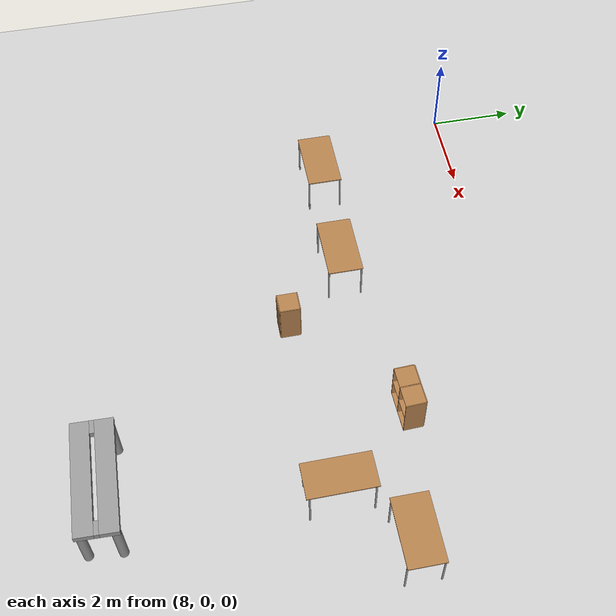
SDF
<sdf version="1.6">
 <world name="default">
  <model name="ground_plane">
   <static>1</static>
   <link name="link">
    <collision name="collision">
     <geometry><plane><normal>0 0 1</normal><size>100 100</size></plane></geometry>
     <surface><friction><ode><mu>100</mu><mu2>50</mu2></ode></friction></surface>
    </collision>
    <visual name="visual">
     <cast_shadows>0</cast_shadows>
     <geometry><plane><normal>0 0 1</normal><size>100 100</size></plane></geometry>
     <material>
      <script><uri>file://media/materials/scripts/gazebo.material</uri><name>Gazebo/Grey</name></script>
     </material>
    </visual>
   </link>
  </model>
  <model name="table_7">
   <static>1</static>
   <link name="link">
    <collision name="surface">
     <pose>0 0 1 0 -0 0</pose>
     <geometry><box><size>1.5 0.8 0.03</size></box></geometry>
     <surface><friction><ode><mu>0.6</mu><mu2>0.6</mu2></ode></friction></surface>
    </collision>
    <visual name="visual1">
     <pose>0 0 1 0 -0 0</pose>
     <geometry><box><size>1.5 0.8 0.03</size></box></geometry>
     <material>
      <script><uri>file://media/materials/scripts/gazebo.material</uri><name>Gazebo/Wood</name></script>
     </material>
    </visual>
    <collision name="front_left_leg">
     <pose>0.68 0.38 0.5 0 -0 0</pose>
     <geometry><cylinder><radius>0.02</radius><length>1</length></cylinder></geometry>
    </collision>
    <visual name="front_left_leg">
     <pose>0.68 0.38 0.5 0 -0 0</pose>
     <geometry><cylinder><radius>0.02</radius><length>1</length></cylinder></geometry>
     <material>
      <script><uri>file://media/materials/scripts/gazebo.material</uri><name>Gazebo/Grey</name></script>
     </material>
    </visual>
    <collision name="front_right_leg">
     <pose>0.68 -0.38 0.5 0 -0 0</pose>
     <geometry><cylinder><radius>0.02</radius><length>1</length></cylinder></geometry>
    </collision>
    <visual name="front_right_leg">
     <pose>0.68 -0.38 0.5 0 -0 0</pose>
     <geometry><cylinder><radius>0.02</radius><length>1</length></cylinder></geometry>
     <material>
      <script><uri>file://media/materials/scripts/gazebo.material</uri><name>Gazebo/Grey</name></script>
     </material>
    </visual>
    <collision name="back_right_leg">
     <pose>-0.68 -0.38 0.5 0 -0 0</pose>
     <geometry><cylinder><radius>0.02</radius><length>1</length></cylinder></geometry>
    </collision>
    <visual name="back_right_leg">
     <pose>-0.68 -0.38 0.5 0 -0 0</pose>
     <geometry><cylinder><radius>0.02</radius><length>1</length></cylinder></geometry>
     <material>
      <script><uri>file://media/materials/scripts/gazebo.material</uri><name>Gazebo/Grey</name></script>
     </material>
    </visual>
    <collision name="back_left_leg">
     <pose>-0.68 0.38 0.5 0 -0 0</pose>
     <geometry><cylinder><radius>0.02</radius><length>1</length></cylinder></geometry>
    </collision>
    <visual name="back_left_leg">
     <pose>-0.68 0.38 0.5 0 -0 0</pose>
     <geometry><cylinder><radius>0.02</radius><length>1</length></cylinder></geometry>
     <material>
      <script><uri>file://media/materials/scripts/gazebo.material</uri><name>Gazebo/Grey</name></script>
     </material>
    </visual>
   </link>
   <pose>9.59666 -3.43752 0 0 -0 0</pose>
  </model>
  <model name="table_8">
   <static>1</static>
   <link name="link">
    <collision name="surface">
     <pose>0 0 1 0 -0 0</pose>
     <geometry><box><size>1.5 0.8 0.03</size></box></geometry>
     <surface><friction><ode><mu>0.6</mu><mu2>0.6</mu2></ode></friction></surface>
    </collision>
    <visual name="visual1">
     <pose>0 0 1 0 -0 0</pose>
     <geometry><box><size>1.5 0.8 0.03</size></box></geometry>
     <material>
      <script><uri>file://media/materials/scripts/gazebo.material</uri><name>Gazebo/Wood</name></script>
     </material>
    </visual>
    <collision name="front_left_leg">
     <pose>0.68 0.38 0.5 0 -0 0</pose>
     <geometry><cylinder><radius>0.02</radius><length>1</length></cylinder></geometry>
    </collision>
    <visual name="front_left_leg">
     <pose>0.68 0.38 0.5 0 -0 0</pose>
     <geometry><cylinder><radius>0.02</radius><length>1</length></cylinder></geometry>
     <material>
      <script><uri>file://media/materials/scripts/gazebo.material</uri><name>Gazebo/Grey</name></script>
     </material>
    </visual>
    <collision name="front_right_leg">
     <pose>0.68 -0.38 0.5 0 -0 0</pose>
     <geometry><cylinder><radius>0.02</radius><length>1</length></cylinder></geometry>
    </collision>
    <visual name="front_right_leg">
     <pose>0.68 -0.38 0.5 0 -0 0</pose>
     <geometry><cylinder><radius>0.02</radius><length>1</length></cylinder></geometry>
     <material>
      <script><uri>file://media/materials/scripts/gazebo.material</uri><name>Gazebo/Grey</name></script>
     </material>
    </visual>
    <collision name="back_right_leg">
     <pose>-0.68 -0.38 0.5 0 -0 0</pose>
     <geometry><cylinder><radius>0.02</radius><length>1</length></cylinder></geometry>
    </collision>
    <visual name="back_right_leg">
     <pose>-0.68 -0.38 0.5 0 -0 0</pose>
     <geometry><cylinder><radius>0.02</radius><length>1</length></cylinder></geometry>
     <material>
      <script><uri>file://media/materials/scripts/gazebo.material</uri><name>Gazebo/Grey</name></script>
     </material>
    </visual>
    <collision name="back_left_leg">
     <pose>-0.68 0.38 0.5 0 -0 0</pose>
     <geometry><cylinder><radius>0.02</radius><length>1</length></cylinder></geometry>
    </collision>
    <visual name="back_left_leg">
     <pose>-0.68 0.38 0.5 0 -0 0</pose>
     <geometry><cylinder><radius>0.02</radius><length>1</length></cylinder></geometry>
     <material>
      <script><uri>file://media/materials/scripts/gazebo.material</uri><name>Gazebo/Grey</name></script>
     </material>
    </visual>
   </link>
   <pose>12.3488 -3.49481 0 0 -0 0</pose>
  </model>
  <model name="table_9">
   <static>1</static>
   <link name="link">
    <collision name="surface">
     <pose>0 0 1 0 -0 0</pose>
     <geometry><box><size>1.5 0.8 0.03</size></box></geometry>
     <surface><friction><ode><mu>0.6</mu><mu2>0.6</mu2></ode></friction></surface>
    </collision>
    <visual name="visual1">
     <pose>0 0 1 0 -0 0</pose>
     <geometry><box><size>1.5 0.8 0.03</size></box></geometry>
     <material>
      <script><uri>file://media/materials/scripts/gazebo.material</uri><name>Gazebo/Wood</name></script>
     </material>
    </visual>
    <collision name="front_left_leg">
     <pose>0.68 0.38 0.5 0 -0 0</pose>
     <geometry><cylinder><radius>0.02</radius><length>1</length></cylinder></geometry>
    </collision>
    <visual name="front_left_leg">
     <pose>0.68 0.38 0.5 0 -0 0</pose>
     <geometry><cylinder><radius>0.02</radius><length>1</length></cylinder></geometry>
     <material>
      <script><uri>file://media/materials/scripts/gazebo.material</uri><name>Gazebo/Grey</name></script>
     </material>
    </visual>
    <collision name="front_right_leg">
     <pose>0.68 -0.38 0.5 0 -0 0</pose>
     <geometry><cylinder><radius>0.02</radius><length>1</length></cylinder></geometry>
    </collision>
    <visual name="front_right_leg">
     <pose>0.68 -0.38 0.5 0 -0 0</pose>
     <geometry><cylinder><radius>0.02</radius><length>1</length></cylinder></geometry>
     <material>
      <script><uri>file://media/materials/scripts/gazebo.material</uri><name>Gazebo/Grey</name></script>
     </material>
    </visual>
    <collision name="back_right_leg">
     <pose>-0.68 -0.38 0.5 0 -0 0</pose>
     <geometry><cylinder><radius>0.02</radius><length>1</length></cylinder></geometry>
    </collision>
    <visual name="back_right_leg">
     <pose>-0.68 -0.38 0.5 0 -0 0</pose>
     <geometry><cylinder><radius>0.02</radius><length>1</length></cylinder></geometry>
     <material>
      <script><uri>file://media/materials/scripts/gazebo.material</uri><name>Gazebo/Grey</name></script>
     </material>
    </visual>
    <collision name="back_left_leg">
     <pose>-0.68 0.38 0.5 0 -0 0</pose>
     <geometry><cylinder><radius>0.02</radius><length>1</length></cylinder></geometry>
    </collision>
    <visual name="back_left_leg">
     <pose>-0.68 0.38 0.5 0 -0 0</pose>
     <geometry><cylinder><radius>0.02</radius><length>1</length></cylinder></geometry>
     <material>
      <script><uri>file://media/materials/scripts/gazebo.material</uri><name>Gazebo/Grey</name></script>
     </material>
    </visual>
   </link>
   <pose>18.0296 -4.65808 0 0 -0 1.57535</pose>
  </model>
  <model name="table_10">
   <static>1</static>
   <link name="link">
    <collision name="surface">
     <pose>0 0 1 0 -0 0</pose>
     <geometry><box><size>1.5 0.8 0.03</size></box></geometry>
     <surface><friction><ode><mu>0.6</mu><mu2>0.6</mu2></ode></friction></surface>
    </collision>
    <visual name="visual1">
     <pose>0 0 1 0 -0 0</pose>
     <geometry><box><size>1.5 0.8 0.03</size></box></geometry>
     <material>
      <script><uri>file://media/materials/scripts/gazebo.material</uri><name>Gazebo/Wood</name></script>
     </material>
    </visual>
    <collision name="front_left_leg">
     <pose>0.68 0.38 0.5 0 -0 0</pose>
     <geometry><cylinder><radius>0.02</radius><length>1</length></cylinder></geometry>
    </collision>
    <visual name="front_left_leg">
     <pose>0.68 0.38 0.5 0 -0 0</pose>
     <geometry><cylinder><radius>0.02</radius><length>1</length></cylinder></geometry>
     <material>
      <script><uri>file://media/materials/scripts/gazebo.material</uri><name>Gazebo/Grey</name></script>
     </material>
    </visual>
    <collision name="front_right_leg">
     <pose>0.68 -0.38 0.5 0 -0 0</pose>
     <geometry><cylinder><radius>0.02</radius><length>1</length></cylinder></geometry>
    </collision>
    <visual name="front_right_leg">
     <pose>0.68 -0.38 0.5 0 -0 0</pose>
     <geometry><cylinder><radius>0.02</radius><length>1</length></cylinder></geometry>
     <material>
      <script><uri>file://media/materials/scripts/gazebo.material</uri><name>Gazebo/Grey</name></script>
     </material>
    </visual>
    <collision name="back_right_leg">
     <pose>-0.68 -0.38 0.5 0 -0 0</pose>
     <geometry><cylinder><radius>0.02</radius><length>1</length></cylinder></geometry>
    </collision>
    <visual name="back_right_leg">
     <pose>-0.68 -0.38 0.5 0 -0 0</pose>
     <geometry><cylinder><radius>0.02</radius><length>1</length></cylinder></geometry>
     <material>
      <script><uri>file://media/materials/scripts/gazebo.material</uri><name>Gazebo/Grey</name></script>
     </material>
    </visual>
    <collision name="back_left_leg">
     <pose>-0.68 0.38 0.5 0 -0 0</pose>
     <geometry><cylinder><radius>0.02</radius><length>1</length></cylinder></geometry>
    </collision>
    <visual name="back_left_leg">
     <pose>-0.68 0.38 0.5 0 -0 0</pose>
     <geometry><cylinder><radius>0.02</radius><length>1</length></cylinder></geometry>
     <material>
      <script><uri>file://media/materials/scripts/gazebo.material</uri><name>Gazebo/Grey</name></script>
     </material>
    </visual>
   </link>
   <pose>19.4515 -3.39812 0 0 -0 0</pose>
  </model>
  <model name="work_table_3">
   <link name="link_0">
    <pose>1.115 -0.35 -0.3125 0 -0 0</pose>
    <inertial>
     <mass>1</mass>
     <inertia><ixx>0.145833</ixx><ixy>0</ixy><ixz>0</ixz><iyy>0.145833</iyy><iyz>0</iyz><izz>0.125</izz></inertia>
    </inertial>
    <visual name="visual">
     <geometry><cylinder><radius>0.1</radius><length>1.1</length></cylinder></geometry>
     <material>
      <lighting>1</lighting>
      <script><uri>file://media/materials/scripts/gazebo.material</uri><name>Gazebo/Grey</name></script>
      <ambient>0.3 0.3 0.3 1</ambient>
      <diffuse>0.7 0.7 0.7 1</diffuse>
      <specular>0.01 0.01 0.01 1</specular>
      <emissive>0 0 0 1</emissive>
      <shader type="vertex"><normal_map>__default__</normal_map></shader>
     </material>
    </visual>
    <collision name="collision">
     <geometry><cylinder><radius>0.1</radius><length>1.1</length></cylinder></geometry>
     <surface>
      <friction>
       <ode><mu>1</mu><mu2>1</mu2><fdir1>0 0 0</fdir1><slip1>0</slip1><slip2>0</slip2></ode>
       <torsional>
        <coefficient>1</coefficient>
        <patch_radius>0</patch_radius>
        <surface_radius>0</surface_radius>
        <use_patch_radius>1</use_patch_radius>
        <ode><slip>0</slip></ode>
       </torsional>
      </friction>
      <bounce><restitution_coefficient>0</restitution_coefficient><threshold>1e+06</threshold></bounce>
      <contact>
       <collide_without_contact>0</collide_without_contact>
       <collide_without_contact_bitmask>1</collide_without_contact_bitmask>
       <collide_bitmask>1</collide_bitmask>
       <ode>
        <soft_cfm>0</soft_cfm>
        <soft_erp>0.2</soft_erp>
        <kp>1e+13</kp>
        <kd>1</kd>
        <max_vel>0.01</max_vel>
        <min_depth>0</min_depth>
       </ode>
       <bullet>
        <split_impulse>1</split_impulse>
        <split_impulse_penetration_threshold>-0.01</split_impulse_penetration_threshold>
        <soft_cfm>0</soft_cfm>
        <soft_erp>0.2</soft_erp>
        <kp>1e+13</kp>
        <kd>1</kd>
       </bullet>
      </contact>
     </surface>
    </collision>
   </link>
   <link name="link_0_clone">
    <pose>-1.145 -0.35 -0.3125 0 -0 0</pose>
    <inertial>
     <mass>1</mass>
     <inertia><ixx>0.145833</ixx><ixy>0</ixy><ixz>0</ixz><iyy>0.145833</iyy><iyz>0</iyz><izz>0.125</izz></inertia>
    </inertial>
    <visual name="visual">
     <geometry><cylinder><radius>0.1</radius><length>1.1</length></cylinder></geometry>
     <material>
      <lighting>1</lighting>
      <script><uri>file://media/materials/scripts/gazebo.material</uri><name>Gazebo/Grey</name></script>
      <ambient>0.3 0.3 0.3 1</ambient>
      <diffuse>0.7 0.7 0.7 1</diffuse>
      <specular>0.01 0.01 0.01 1</specular>
      <emissive>0 0 0 1</emissive>
      <shader type="vertex"><normal_map>__default__</normal_map></shader>
     </material>
    </visual>
    <collision name="collision">
     <geometry><cylinder><radius>0.1</radius><length>1.1</length></cylinder></geometry>
     <surface>
      <friction>
       <ode><mu>1</mu><mu2>1</mu2><fdir1>0 0 0</fdir1><slip1>0</slip1><slip2>0</slip2></ode>
       <torsional>
        <coefficient>1</coefficient>
        <patch_radius>0</patch_radius>
        <surface_radius>0</surface_radius>
        <use_patch_radius>1</use_patch_radius>
        <ode><slip>0</slip></ode>
       </torsional>
      </friction>
      <bounce><restitution_coefficient>0</restitution_coefficient><threshold>1e+06</threshold></bounce>
      <contact>
       <collide_without_contact>0</collide_without_contact>
       <collide_without_contact_bitmask>1</collide_without_contact_bitmask>
       <collide_bitmask>1</collide_bitmask>
       <ode>
        <soft_cfm>0</soft_cfm>
        <soft_erp>0.2</soft_erp>
        <kp>1e+13</kp>
        <kd>1</kd>
        <max_vel>0.01</max_vel>
        <min_depth>0</min_depth>
       </ode>
       <bullet>
        <split_impulse>1</split_impulse>
        <split_impulse_penetration_threshold>-0.01</split_impulse_penetration_threshold>
        <soft_cfm>0</soft_cfm>
        <soft_erp>0.2</soft_erp>
        <kp>1e+13</kp>
        <kd>1</kd>
       </bullet>
      </contact>
     </surface>
    </collision>
   </link>
   <link name="link_0_clone_0">
    <pose>-1.145 0.35 -0.3125 0 -0 0</pose>
    <inertial>
     <mass>1</mass>
     <inertia><ixx>0.145833</ixx><ixy>0</ixy><ixz>0</ixz><iyy>0.145833</iyy><iyz>0</iyz><izz>0.125</izz></inertia>
    </inertial>
    <visual name="visual">
     <geometry><cylinder><radius>0.1</radius><length>1.1</length></cylinder></geometry>
     <material>
      <lighting>1</lighting>
      <script><uri>file://media/materials/scripts/gazebo.material</uri><name>Gazebo/Grey</name></script>
      <ambient>0.3 0.3 0.3 1</ambient>
      <diffuse>0.7 0.7 0.7 1</diffuse>
      <specular>0.01 0.01 0.01 1</specular>
      <emissive>0 0 0 1</emissive>
      <shader type="vertex"><normal_map>__default__</normal_map></shader>
     </material>
    </visual>
    <collision name="collision">
     <geometry><cylinder><radius>0.1</radius><length>1.1</length></cylinder></geometry>
     <surface>
      <friction>
       <ode><mu>1</mu><mu2>1</mu2><fdir1>0 0 0</fdir1><slip1>0</slip1><slip2>0</slip2></ode>
       <torsional>
        <coefficient>1</coefficient>
        <patch_radius>0</patch_radius>
        <surface_radius>0</surface_radius>
        <use_patch_radius>1</use_patch_radius>
        <ode><slip>0</slip></ode>
       </torsional>
      </friction>
      <bounce><restitution_coefficient>0</restitution_coefficient><threshold>1e+06</threshold></bounce>
      <contact>
       <collide_without_contact>0</collide_without_contact>
       <collide_without_contact_bitmask>1</collide_without_contact_bitmask>
       <collide_bitmask>1</collide_bitmask>
       <ode>
        <soft_cfm>0</soft_cfm>
        <soft_erp>0.2</soft_erp>
        <kp>1e+13</kp>
        <kd>1</kd>
        <max_vel>0.01</max_vel>
        <min_depth>0</min_depth>
       </ode>
       <bullet>
        <split_impulse>1</split_impulse>
        <split_impulse_penetration_threshold>-0.01</split_impulse_penetration_threshold>
        <soft_cfm>0</soft_cfm>
        <soft_erp>0.2</soft_erp>
        <kp>1e+13</kp>
        <kd>1</kd>
       </bullet>
      </contact>
     </surface>
    </collision>
   </link>
   <link name="link_0_clone_1">
    <pose>1.155 0.35 -0.3125 0 -0 0</pose>
    <inertial>
     <mass>1</mass>
     <inertia><ixx>0.145833</ixx><ixy>0</ixy><ixz>0</ixz><iyy>0.145833</iyy><iyz>0</iyz><izz>0.125</izz></inertia>
    </inertial>
    <visual name="visual">
     <geometry><cylinder><radius>0.1</radius><length>1.1</length></cylinder></geometry>
     <material>
      <lighting>1</lighting>
      <script><uri>file://media/materials/scripts/gazebo.material</uri><name>Gazebo/Grey</name></script>
      <ambient>0.3 0.3 0.3 1</ambient>
      <diffuse>0.7 0.7 0.7 1</diffuse>
      <specular>0.01 0.01 0.01 1</specular>
      <emissive>0 0 0 1</emissive>
      <shader type="vertex"><normal_map>__default__</normal_map></shader>
     </material>
    </visual>
    <collision name="collision">
     <geometry><cylinder><radius>0.1</radius><length>1.1</length></cylinder></geometry>
     <surface>
      <friction>
       <ode><mu>1</mu><mu2>1</mu2><fdir1>0 0 0</fdir1><slip1>0</slip1><slip2>0</slip2></ode>
       <torsional>
        <coefficient>1</coefficient>
        <patch_radius>0</patch_radius>
        <surface_radius>0</surface_radius>
        <use_patch_radius>1</use_patch_radius>
        <ode><slip>0</slip></ode>
       </torsional>
      </friction>
      <bounce><restitution_coefficient>0</restitution_coefficient><threshold>1e+06</threshold></bounce>
      <contact>
       <collide_without_contact>0</collide_without_contact>
       <collide_without_contact_bitmask>1</collide_without_contact_bitmask>
       <collide_bitmask>1</collide_bitmask>
       <ode>
        <soft_cfm>0</soft_cfm>
        <soft_erp>0.2</soft_erp>
        <kp>1e+13</kp>
        <kd>1</kd>
        <max_vel>0.01</max_vel>
        <min_depth>0</min_depth>
       </ode>
       <bullet>
        <split_impulse>1</split_impulse>
        <split_impulse_penetration_threshold>-0.01</split_impulse_penetration_threshold>
        <soft_cfm>0</soft_cfm>
        <soft_erp>0.2</soft_erp>
        <kp>1e+13</kp>
        <kd>1</kd>
       </bullet>
      </contact>
     </surface>
    </collision>
   </link>
   <link name="link_1">
    <pose>0.005 -0.25 0.3125 0 -0 0</pose>
    <inertial>
     <mass>1</mass>
     <inertia>
      <ixx>0.166667</ixx>
      <ixy>0</ixy>
      <ixz>0</ixz>
      <iyy>0.166667</iyy>
      <iyz>0</iyz>
      <izz>0.166667</izz>
     </inertia>
    </inertial>
    <visual name="visual">
     <geometry><box><size>2.5 0.4 0.15</size></box></geometry>
     <material>
      <lighting>1</lighting>
      <script><uri>file://media/materials/scripts/gazebo.material</uri><name>Gazebo/Grey</name></script>
      <ambient>0.3 0.3 0.3 1</ambient>
      <diffuse>0.7 0.7 0.7 1</diffuse>
      <specular>0.01 0.01 0.01 1</specular>
      <emissive>0 0 0 1</emissive>
      <shader type="vertex"><normal_map>__default__</normal_map></shader>
     </material>
    </visual>
    <collision name="collision">
     <geometry><box><size>2.5 0.4 0.15</size></box></geometry>
     <surface>
      <friction>
       <ode><mu>1</mu><mu2>1</mu2><fdir1>0 0 0</fdir1><slip1>0</slip1><slip2>0</slip2></ode>
       <torsional>
        <coefficient>1</coefficient>
        <patch_radius>0</patch_radius>
        <surface_radius>0</surface_radius>
        <use_patch_radius>1</use_patch_radius>
        <ode><slip>0</slip></ode>
       </torsional>
      </friction>
      <bounce><restitution_coefficient>0</restitution_coefficient><threshold>1e+06</threshold></bounce>
      <contact>
       <collide_without_contact>0</collide_without_contact>
       <collide_without_contact_bitmask>1</collide_without_contact_bitmask>
       <collide_bitmask>1</collide_bitmask>
       <ode>
        <soft_cfm>0</soft_cfm>
        <soft_erp>0.2</soft_erp>
        <kp>1e+13</kp>
        <kd>1</kd>
        <max_vel>0.01</max_vel>
        <min_depth>0</min_depth>
       </ode>
       <bullet>
        <split_impulse>1</split_impulse>
        <split_impulse_penetration_threshold>-0.01</split_impulse_penetration_threshold>
        <soft_cfm>0</soft_cfm>
        <soft_erp>0.2</soft_erp>
        <kp>1e+13</kp>
        <kd>1</kd>
       </bullet>
      </contact>
     </surface>
    </collision>
   </link>
   <link name="link_1_clone">
    <pose>0.005 0.25 0.3125 0 -0 0</pose>
    <inertial>
     <mass>1</mass>
     <inertia>
      <ixx>0.166667</ixx>
      <ixy>0</ixy>
      <ixz>0</ixz>
      <iyy>0.166667</iyy>
      <iyz>0</iyz>
      <izz>0.166667</izz>
     </inertia>
    </inertial>
    <visual name="visual">
     <geometry><box><size>2.5 0.4 0.15</size></box></geometry>
     <material>
      <lighting>1</lighting>
      <script><uri>file://media/materials/scripts/gazebo.material</uri><name>Gazebo/Grey</name></script>
      <ambient>0.3 0.3 0.3 1</ambient>
      <diffuse>0.7 0.7 0.7 1</diffuse>
      <specular>0.01 0.01 0.01 1</specular>
      <emissive>0 0 0 1</emissive>
      <shader type="vertex"><normal_map>__default__</normal_map></shader>
     </material>
    </visual>
    <collision name="collision">
     <geometry><box><size>2.5 0.4 0.15</size></box></geometry>
     <surface>
      <friction>
       <ode><mu>1</mu><mu2>1</mu2><fdir1>0 0 0</fdir1><slip1>0</slip1><slip2>0</slip2></ode>
       <torsional>
        <coefficient>1</coefficient>
        <patch_radius>0</patch_radius>
        <surface_radius>0</surface_radius>
        <use_patch_radius>1</use_patch_radius>
        <ode><slip>0</slip></ode>
       </torsional>
      </friction>
      <bounce><restitution_coefficient>0</restitution_coefficient><threshold>1e+06</threshold></bounce>
      <contact>
       <collide_without_contact>0</collide_without_contact>
       <collide_without_contact_bitmask>1</collide_without_contact_bitmask>
       <collide_bitmask>1</collide_bitmask>
       <ode>
        <soft_cfm>0</soft_cfm>
        <soft_erp>0.2</soft_erp>
        <kp>1e+13</kp>
        <kd>1</kd>
        <max_vel>0.01</max_vel>
        <min_depth>0</min_depth>
       </ode>
       <bullet>
        <split_impulse>1</split_impulse>
        <split_impulse_penetration_threshold>-0.01</split_impulse_penetration_threshold>
        <soft_cfm>0</soft_cfm>
        <soft_erp>0.2</soft_erp>
        <kp>1e+13</kp>
        <kd>1</kd>
       </bullet>
      </contact>
     </surface>
    </collision>
   </link>
   <link name="link_1_clone_0">
    <pose>-1.095 0 0.3125 0 -0 0</pose>
    <inertial>
     <mass>1</mass>
     <inertia>
      <ixx>0.166667</ixx>
      <ixy>0</ixy>
      <ixz>0</ixz>
      <iyy>0.166667</iyy>
      <iyz>0</iyz>
      <izz>0.166667</izz>
     </inertia>
    </inertial>
    <visual name="visual">
     <geometry><box><size>0.3 0.1 0.15</size></box></geometry>
     <material>
      <lighting>1</lighting>
      <script><uri>file://media/materials/scripts/gazebo.material</uri><name>Gazebo/Grey</name></script>
      <ambient>0.3 0.3 0.3 1</ambient>
      <diffuse>0.7 0.7 0.7 1</diffuse>
      <specular>0.01 0.01 0.01 1</specular>
      <emissive>0 0 0 1</emissive>
      <shader type="vertex"><normal_map>__default__</normal_map></shader>
     </material>
    </visual>
    <collision name="collision">
     <geometry><box><size>0.3 0.1 0.15</size></box></geometry>
     <surface>
      <friction>
       <ode><mu>1</mu><mu2>1</mu2><fdir1>0 0 0</fdir1><slip1>0</slip1><slip2>0</slip2></ode>
       <torsional>
        <coefficient>1</coefficient>
        <patch_radius>0</patch_radius>
        <surface_radius>0</surface_radius>
        <use_patch_radius>1</use_patch_radius>
        <ode><slip>0</slip></ode>
       </torsional>
      </friction>
      <bounce><restitution_coefficient>0</restitution_coefficient><threshold>1e+06</threshold></bounce>
      <contact>
       <collide_without_contact>0</collide_without_contact>
       <collide_without_contact_bitmask>1</collide_without_contact_bitmask>
       <collide_bitmask>1</collide_bitmask>
       <ode>
        <soft_cfm>0</soft_cfm>
        <soft_erp>0.2</soft_erp>
        <kp>1e+13</kp>
        <kd>1</kd>
        <max_vel>0.01</max_vel>
        <min_depth>0</min_depth>
       </ode>
       <bullet>
        <split_impulse>1</split_impulse>
        <split_impulse_penetration_threshold>-0.01</split_impulse_penetration_threshold>
        <soft_cfm>0</soft_cfm>
        <soft_erp>0.2</soft_erp>
        <kp>1e+13</kp>
        <kd>1</kd>
       </bullet>
      </contact>
     </surface>
    </collision>
   </link>
   <link name="link_1_clone_0_clone">
    <pose>1.105 0 0.3125 0 -0 0</pose>
    <inertial>
     <mass>1</mass>
     <inertia>
      <ixx>0.166667</ixx>
      <ixy>0</ixy>
      <ixz>0</ixz>
      <iyy>0.166667</iyy>
      <iyz>0</iyz>
      <izz>0.166667</izz>
     </inertia>
    </inertial>
    <visual name="visual">
     <geometry><box><size>0.3 0.1 0.15</size></box></geometry>
     <material>
      <lighting>1</lighting>
      <script><uri>file://media/materials/scripts/gazebo.material</uri><name>Gazebo/Grey</name></script>
      <ambient>0.3 0.3 0.3 1</ambient>
      <diffuse>0.7 0.7 0.7 1</diffuse>
      <specular>0.01 0.01 0.01 1</specular>
      <emissive>0 0 0 1</emissive>
      <shader type="vertex"><normal_map>__default__</normal_map></shader>
     </material>
    </visual>
    <collision name="collision">
     <geometry><box><size>0.3 0.1 0.15</size></box></geometry>
     <surface>
      <friction>
       <ode><mu>1</mu><mu2>1</mu2><fdir1>0 0 0</fdir1><slip1>0</slip1><slip2>0</slip2></ode>
       <torsional>
        <coefficient>1</coefficient>
        <patch_radius>0</patch_radius>
        <surface_radius>0</surface_radius>
        <use_patch_radius>1</use_patch_radius>
        <ode><slip>0</slip></ode>
       </torsional>
      </friction>
      <bounce><restitution_coefficient>0</restitution_coefficient><threshold>1e+06</threshold></bounce>
      <contact>
       <collide_without_contact>0</collide_without_contact>
       <collide_without_contact_bitmask>1</collide_without_contact_bitmask>
       <collide_bitmask>1</collide_bitmask>
       <ode>
        <soft_cfm>0</soft_cfm>
        <soft_erp>0.2</soft_erp>
        <kp>1e+13</kp>
        <kd>1</kd>
        <max_vel>0.01</max_vel>
        <min_depth>0</min_depth>
       </ode>
       <bullet>
        <split_impulse>1</split_impulse>
        <split_impulse_penetration_threshold>-0.01</split_impulse_penetration_threshold>
        <soft_cfm>0</soft_cfm>
        <soft_erp>0.2</soft_erp>
        <kp>1e+13</kp>
        <kd>1</kd>
       </bullet>
      </contact>
     </surface>
    </collision>
   </link>
   <joint name="link_1_JOINT_0" type="fixed">
    <parent>link_1</parent>
    <child>link_1_clone_0</child>
    <physics>
     <ode><limit><cfm>0</cfm><erp>0.2</erp></limit><suspension><cfm>0</cfm><erp>0.2</erp></suspension></ode>
    </physics>
   </joint>
   <joint name="link_1_JOINT_1" type="fixed">
    <parent>link_1</parent>
    <child>link_1_clone_0_clone</child>
    <physics>
     <ode><limit><cfm>0</cfm><erp>0.2</erp></limit><suspension><cfm>0</cfm><erp>0.2</erp></suspension></ode>
    </physics>
   </joint>
   <joint name="link_1_JOINT_2" type="fixed">
    <parent>link_1</parent>
    <child>link_1_clone</child>
    <physics>
     <ode><limit><cfm>0</cfm><erp>0.2</erp></limit><suspension><cfm>0</cfm><erp>0.2</erp></suspension></ode>
    </physics>
   </joint>
   <joint name="link_1_JOINT_3" type="fixed">
    <parent>link_1</parent>
    <child>link_0_clone</child>
    <physics>
     <ode><limit><cfm>0</cfm><erp>0.2</erp></limit><suspension><cfm>0</cfm><erp>0.2</erp></suspension></ode>
    </physics>
   </joint>
   <joint name="link_1_JOINT_4" type="fixed">
    <parent>link_1</parent>
    <child>link_0</child>
    <physics>
     <ode><limit><cfm>0</cfm><erp>0.2</erp></limit><suspension><cfm>0</cfm><erp>0.2</erp></suspension></ode>
    </physics>
   </joint>
   <joint name="link_1_clone_JOINT_5" type="fixed">
    <parent>link_1_clone</parent>
    <child>link_0_clone_0</child>
    <physics>
     <ode><limit><cfm>0</cfm><erp>0.2</erp></limit><suspension><cfm>0</cfm><erp>0.2</erp></suspension></ode>
    </physics>
   </joint>
   <joint name="link_1_clone_JOINT_6" type="fixed">
    <parent>link_1_clone</parent>
    <child>link_0_clone_1</child>
    <physics>
     <ode><limit><cfm>0</cfm><erp>0.2</erp></limit><suspension><cfm>0</cfm><erp>0.2</erp></suspension></ode>
    </physics>
   </joint>
   <static>0</static>
   <pose>17.2253 -9.4266 0.862499 4e-06 -0 -0.027201</pose>
  </model>
  <model name="cabinet_0">
   <static>1</static>
   <link name="cabinet_bottom_plate">
    <inertial>
     <pose>0 0 -1 0 -0 0</pose>
     <inertia><ixx>2.05</ixx><ixy>0</ixy><ixz>0</ixz><iyy>2.05</iyy><iyz>0</iyz><izz>2.05</izz></inertia>
     <mass>25</mass>
    </inertial>
    <collision name="cabinet_bottom_plate_geom">
     <pose>0 0 0.01 0 -0 0</pose>
     <geometry><box><size>0.45 0.45 0.02</size></box></geometry>
    </collision>
    <visual name="cabinet_bottom_plate_geom_visual">
     <pose>0 0 0.01 0 -0 0</pose>
     <geometry><box><size>0.45 0.45 0.02</size></box></geometry>
     <material>
      <script><uri>file://media/materials/scripts/gazebo.material</uri><name>Gazebo/Wood</name></script>
     </material>
    </visual>
    <collision name="cabinet_bottom_plate_geom_cabinet_back_plate">
     <pose>0.235 0 0.51 0 -0 0</pose>
     <geometry><box><size>0.02 0.45 1.02</size></box></geometry>
    </collision>
    <visual name="cabinet_bottom_plate_geom_cabinet_back_plate_visual">
     <pose>0.235 0 0.51 0 -0 0</pose>
     <geometry><box><size>0.02 0.45 1.02</size></box></geometry>
     <material>
      <script><uri>file://media/materials/scripts/gazebo.material</uri><name>Gazebo/Wood</name></script>
     </material>
    </visual>
    <collision name="cabinet_bottom_plate_geom_cabinet_left_plate">
     <pose>0 0.235 0.51 0 -0 0</pose>
     <geometry><box><size>0.45 0.02 1.02</size></box></geometry>
    </collision>
    <visual name="cabinet_bottom_plate_geom_cabinet_left_plate_visual">
     <pose>0 0.235 0.51 0 -0 0</pose>
     <geometry><box><size>0.45 0.02 1.02</size></box></geometry>
     <material>
      <script><uri>file://media/materials/scripts/gazebo.material</uri><name>Gazebo/Wood</name></script>
     </material>
    </visual>
    <collision name="cabinet_bottom_plate_geom_cabinet_middle_plate">
     <pose>0 0 0.51 0 -0 0</pose>
     <geometry><box><size>0.45 0.45 0.02</size></box></geometry>
    </collision>
    <visual name="cabinet_bottom_plate_geom_cabinet_middle_plate_visual">
     <pose>0 0 0.51 0 -0 0</pose>
     <geometry><box><size>0.45 0.45 0.02</size></box></geometry>
     <material>
      <script><uri>file://media/materials/scripts/gazebo.material</uri><name>Gazebo/Wood</name></script>
     </material>
    </visual>
    <collision name="cabinet_bottom_plate_geom_cabinet_right_plate">
     <pose>0 -0.235 0.51 0 -0 0</pose>
     <geometry><box><size>0.45 0.02 1.02</size></box></geometry>
    </collision>
    <visual name="cabinet_bottom_plate_geom_cabinet_right_plate_visual">
     <pose>0 -0.235 0.51 0 -0 0</pose>
     <geometry><box><size>0.45 0.02 1.02</size></box></geometry>
     <material>
      <script><uri>file://media/materials/scripts/gazebo.material</uri><name>Gazebo/Wood</name></script>
     </material>
    </visual>
    <collision name="cabinet_bottom_plate_geom_cabinet_top_plate">
     <pose>0 0 1.01 0 -0 0</pose>
     <geometry><box><size>0.45 0.45 0.02</size></box></geometry>
    </collision>
    <visual name="cabinet_bottom_plate_geom_cabinet_top_plate_visual">
     <pose>0 0 1.01 0 -0 0</pose>
     <geometry><box><size>0.45 0.45 0.02</size></box></geometry>
     <material>
      <script><uri>file://media/materials/scripts/gazebo.material</uri><name>Gazebo/Wood</name></script>
     </material>
    </visual>
   </link>
   <pose>13.6957 -4.93589 0 0 -0 0</pose>
  </model>
  <model name="cabinet_2_clone">
   <static>1</static>
   <link name="cabinet_bottom_plate">
    <inertial>
     <pose>0 0 -1 0 -0 0</pose>
     <inertia><ixx>2.05</ixx><ixy>0</ixy><ixz>0</ixz><iyy>2.05</iyy><iyz>0</iyz><izz>2.05</izz></inertia>
     <mass>25</mass>
    </inertial>
    <collision name="cabinet_bottom_plate_geom">
     <pose>0 0 0.01 0 -0 0</pose>
     <geometry><box><size>0.45 0.45 0.02</size></box></geometry>
    </collision>
    <visual name="cabinet_bottom_plate_geom_visual">
     <pose>0 0 0.01 0 -0 0</pose>
     <geometry><box><size>0.45 0.45 0.02</size></box></geometry>
     <material>
      <script><uri>file://media/materials/scripts/gazebo.material</uri><name>Gazebo/Wood</name></script>
     </material>
    </visual>
    <collision name="cabinet_bottom_plate_geom_cabinet_back_plate">
     <pose>0.235 0 0.51 0 -0 0</pose>
     <geometry><box><size>0.02 0.45 1.02</size></box></geometry>
    </collision>
    <visual name="cabinet_bottom_plate_geom_cabinet_back_plate_visual">
     <pose>0.235 0 0.51 0 -0 0</pose>
     <geometry><box><size>0.02 0.45 1.02</size></box></geometry>
     <material>
      <script><uri>file://media/materials/scripts/gazebo.material</uri><name>Gazebo/Wood</name></script>
     </material>
    </visual>
    <collision name="cabinet_bottom_plate_geom_cabinet_left_plate">
     <pose>0 0.235 0.51 0 -0 0</pose>
     <geometry><box><size>0.45 0.02 1.02</size></box></geometry>
    </collision>
    <visual name="cabinet_bottom_plate_geom_cabinet_left_plate_visual">
     <pose>0 0.235 0.51 0 -0 0</pose>
     <geometry><box><size>0.45 0.02 1.02</size></box></geometry>
     <material>
      <script><uri>file://media/materials/scripts/gazebo.material</uri><name>Gazebo/Wood</name></script>
     </material>
    </visual>
    <collision name="cabinet_bottom_plate_geom_cabinet_middle_plate">
     <pose>0 0 0.51 0 -0 0</pose>
     <geometry><box><size>0.45 0.45 0.02</size></box></geometry>
    </collision>
    <visual name="cabinet_bottom_plate_geom_cabinet_middle_plate_visual">
     <pose>0 0 0.51 0 -0 0</pose>
     <geometry><box><size>0.45 0.45 0.02</size></box></geometry>
     <material>
      <script><uri>file://media/materials/scripts/gazebo.material</uri><name>Gazebo/Wood</name></script>
     </material>
    </visual>
    <collision name="cabinet_bottom_plate_geom_cabinet_right_plate">
     <pose>0 -0.235 0.51 0 -0 0</pose>
     <geometry><box><size>0.45 0.02 1.02</size></box></geometry>
    </collision>
    <visual name="cabinet_bottom_plate_geom_cabinet_right_plate_visual">
     <pose>0 -0.235 0.51 0 -0 0</pose>
     <geometry><box><size>0.45 0.02 1.02</size></box></geometry>
     <material>
      <script><uri>file://media/materials/scripts/gazebo.material</uri><name>Gazebo/Wood</name></script>
     </material>
    </visual>
    <collision name="cabinet_bottom_plate_geom_cabinet_top_plate">
     <pose>0 0 1.01 0 -0 0</pose>
     <geometry><box><size>0.45 0.45 0.02</size></box></geometry>
    </collision>
    <visual name="cabinet_bottom_plate_geom_cabinet_top_plate_visual">
     <pose>0 0 1.01 0 -0 0</pose>
     <geometry><box><size>0.45 0.45 0.02</size></box></geometry>
     <material>
      <script><uri>file://media/materials/scripts/gazebo.material</uri><name>Gazebo/Wood</name></script>
     </material>
    </visual>
   </link>
   <pose>16.0703 -2.79996 0 0 -0 1.61191</pose>
  </model>
  <model name="cabinet_2_clone_0">
   <static>1</static>
   <link name="cabinet_bottom_plate">
    <inertial>
     <pose>0 0 -1 0 -0 0</pose>
     <inertia><ixx>2.05</ixx><ixy>0</ixy><ixz>0</ixz><iyy>2.05</iyy><iyz>0</iyz><izz>2.05</izz></inertia>
     <mass>25</mass>
    </inertial>
    <collision name="cabinet_bottom_plate_geom">
     <pose>0 0 0.01 0 -0 0</pose>
     <geometry><box><size>0.45 0.45 0.02</size></box></geometry>
    </collision>
    <visual name="cabinet_bottom_plate_geom_visual">
     <pose>0 0 0.01 0 -0 0</pose>
     <geometry><box><size>0.45 0.45 0.02</size></box></geometry>
     <material>
      <script><uri>file://media/materials/scripts/gazebo.material</uri><name>Gazebo/Wood</name></script>
     </material>
    </visual>
    <collision name="cabinet_bottom_plate_geom_cabinet_back_plate">
     <pose>0.235 0 0.51 0 -0 0</pose>
     <geometry><box><size>0.02 0.45 1.02</size></box></geometry>
    </collision>
    <visual name="cabinet_bottom_plate_geom_cabinet_back_plate_visual">
     <pose>0.235 0 0.51 0 -0 0</pose>
     <geometry><box><size>0.02 0.45 1.02</size></box></geometry>
     <material>
      <script><uri>file://media/materials/scripts/gazebo.material</uri><name>Gazebo/Wood</name></script>
     </material>
    </visual>
    <collision name="cabinet_bottom_plate_geom_cabinet_left_plate">
     <pose>0 0.235 0.51 0 -0 0</pose>
     <geometry><box><size>0.45 0.02 1.02</size></box></geometry>
    </collision>
    <visual name="cabinet_bottom_plate_geom_cabinet_left_plate_visual">
     <pose>0 0.235 0.51 0 -0 0</pose>
     <geometry><box><size>0.45 0.02 1.02</size></box></geometry>
     <material>
      <script><uri>file://media/materials/scripts/gazebo.material</uri><name>Gazebo/Wood</name></script>
     </material>
    </visual>
    <collision name="cabinet_bottom_plate_geom_cabinet_middle_plate">
     <pose>0 0 0.51 0 -0 0</pose>
     <geometry><box><size>0.45 0.45 0.02</size></box></geometry>
    </collision>
    <visual name="cabinet_bottom_plate_geom_cabinet_middle_plate_visual">
     <pose>0 0 0.51 0 -0 0</pose>
     <geometry><box><size>0.45 0.45 0.02</size></box></geometry>
     <material>
      <script><uri>file://media/materials/scripts/gazebo.material</uri><name>Gazebo/Wood</name></script>
     </material>
    </visual>
    <collision name="cabinet_bottom_plate_geom_cabinet_right_plate">
     <pose>0 -0.235 0.51 0 -0 0</pose>
     <geometry><box><size>0.45 0.02 1.02</size></box></geometry>
    </collision>
    <visual name="cabinet_bottom_plate_geom_cabinet_right_plate_visual">
     <pose>0 -0.235 0.51 0 -0 0</pose>
     <geometry><box><size>0.45 0.02 1.02</size></box></geometry>
     <material>
      <script><uri>file://media/materials/scripts/gazebo.material</uri><name>Gazebo/Wood</name></script>
     </material>
    </visual>
    <collision name="cabinet_bottom_plate_geom_cabinet_top_plate">
     <pose>0 0 1.01 0 -0 0</pose>
     <geometry><box><size>0.45 0.45 0.02</size></box></geometry>
    </collision>
    <visual name="cabinet_bottom_plate_geom_cabinet_top_plate_visual">
     <pose>0 0 1.01 0 -0 0</pose>
     <geometry><box><size>0.45 0.45 0.02</size></box></geometry>
     <material>
      <script><uri>file://media/materials/scripts/gazebo.material</uri><name>Gazebo/Wood</name></script>
     </material>
    </visual>
   </link>
   <pose>16.5451 -2.78128 0 0 -0 1.61191</pose>
  </model>
 </world>
</sdf>
